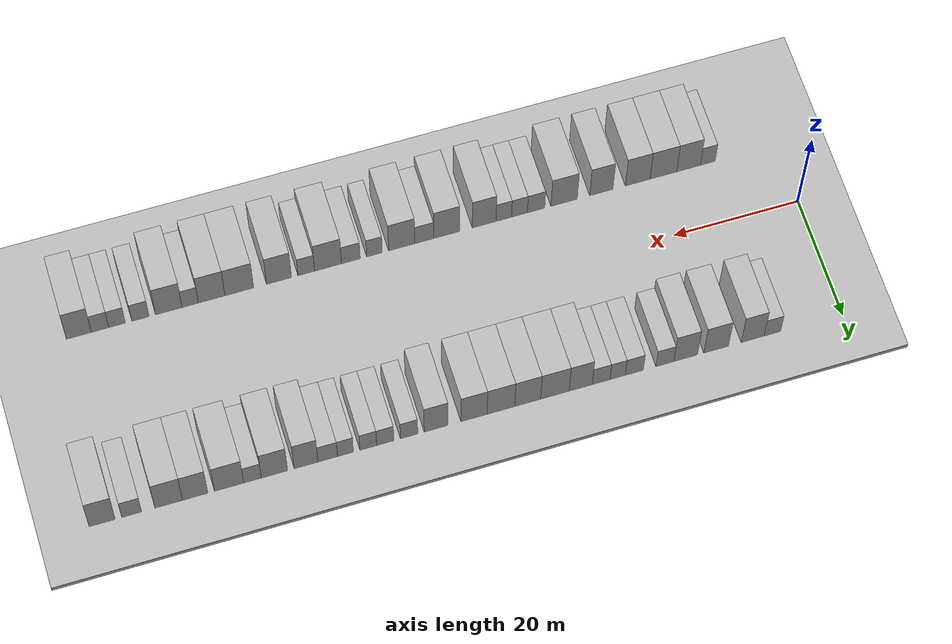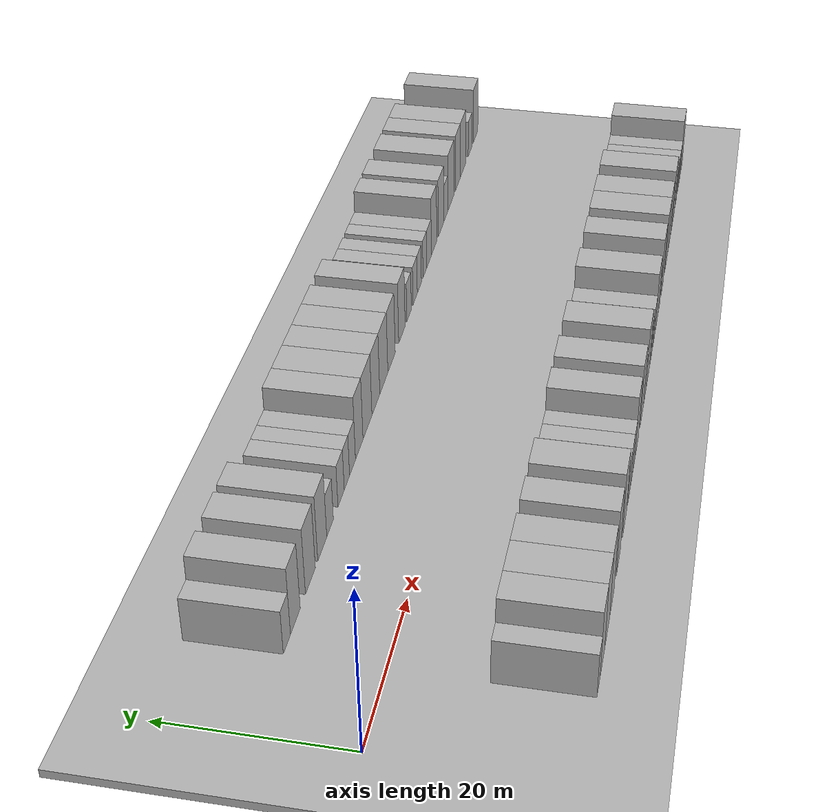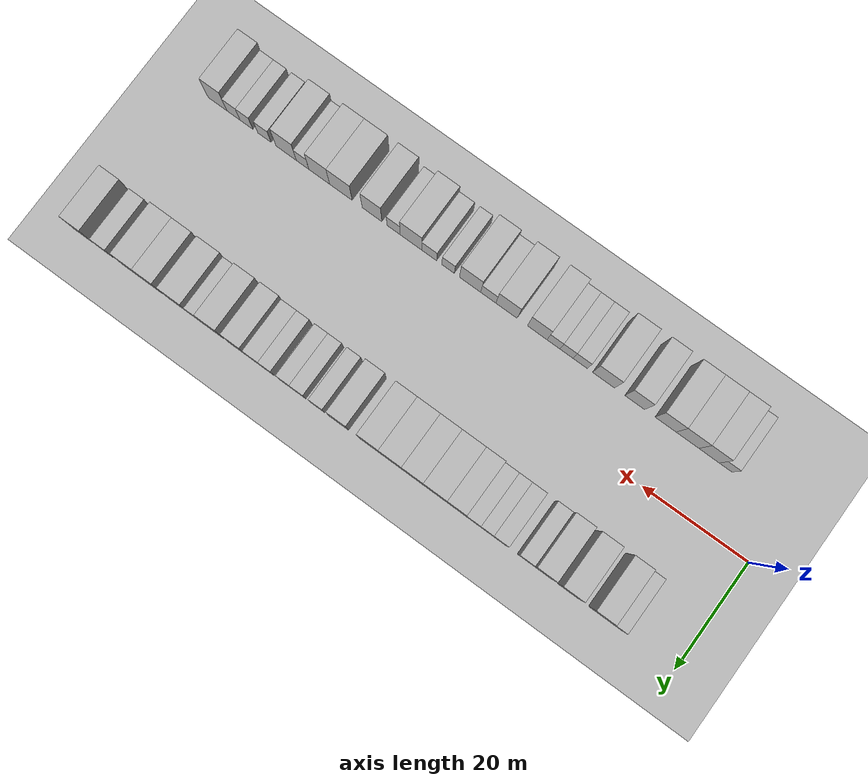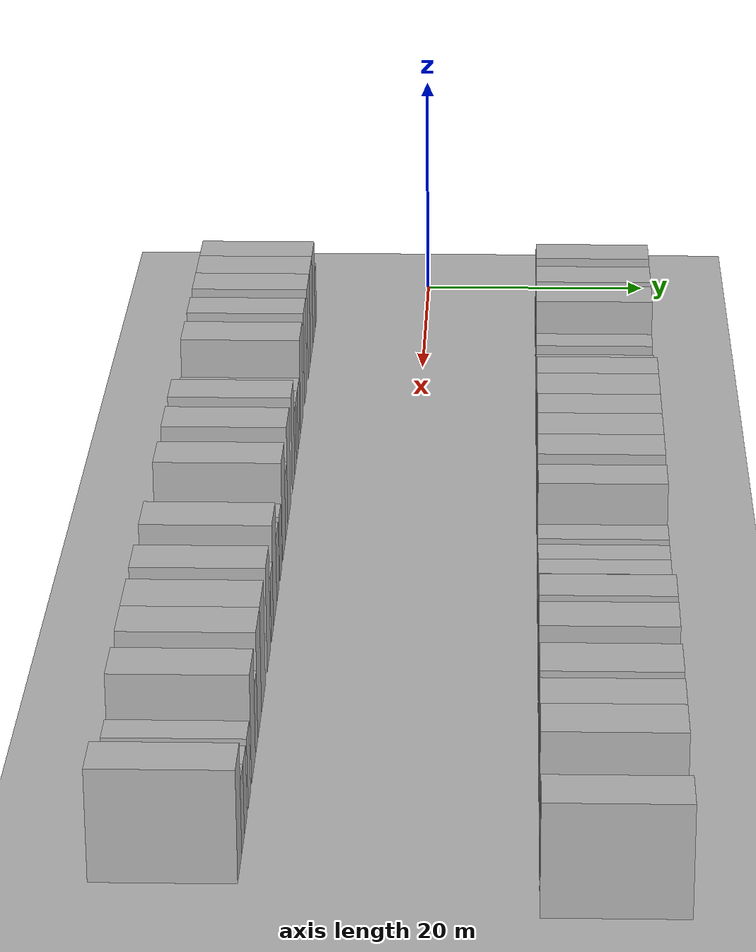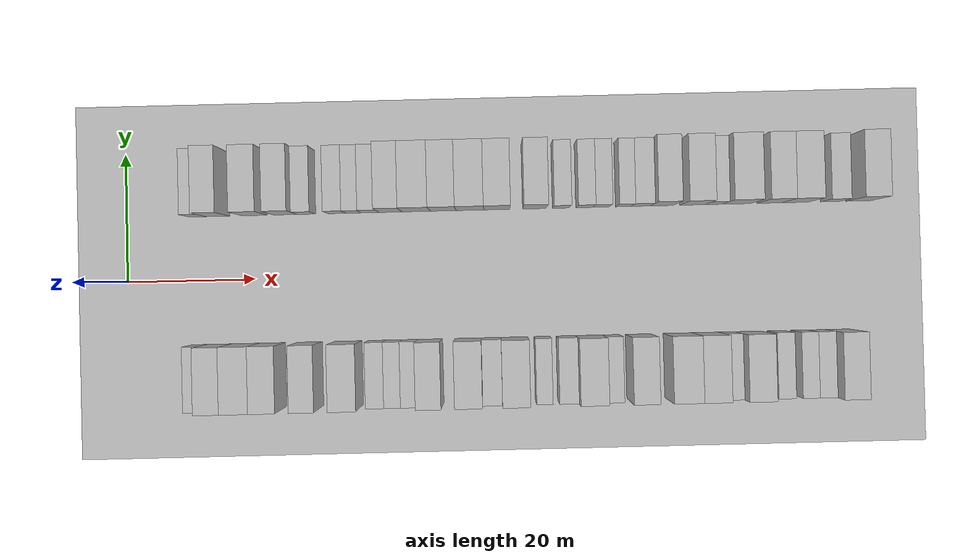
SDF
<sdf version="1.6">
 <world name="default">
  <include><name>ground_plane_1</name><uri>model://HANNAS_ground_plane</uri></include>
  <include>
   <name>ground_plane_2</name>
   <uri>model://HANNAS_ground_plane</uri>
   <pose>100 0 0  0 0 0</pose>
  </include>
  <model name="building_1">
   <static>1</static>
   <pose>11.3128 15.0000 0 0.000000 0.000000 1.570796</pose>
   <link name="link">
    <pose>0 0 3.00 0 0 0</pose>
    <collision name="collision"><geometry><box><size>10.0000 2.6256 6.0000</size></box></geometry></collision>
    <visual name="visual">
     <cast_shadows>0</cast_shadows>
     <geometry><box><size>10.0000 2.6256 6.0000</size></box></geometry>
     <material>
      <script>
       <uri>model://HANNAS_wall/materials/scripts</uri>
       <uri>model://HANNAS_wall/materials/textures</uri>
       <name>vrc/HANNAS_wall</name>
      </script>
     </material>
    </visual>
   </link>
  </model>
  <model name="building_2">
   <static>1</static>
   <pose>14.4493 15.0000 0 0.000000 0.000000 1.570796</pose>
   <link name="link">
    <pose>0 0 4.50 0 0 0</pose>
    <collision name="collision"><geometry><box><size>10.0000 3.6474 9.0000</size></box></geometry></collision>
    <visual name="visual">
     <cast_shadows>0</cast_shadows>
     <geometry><box><size>10.0000 3.6474 9.0000</size></box></geometry>
     <material>
      <script>
       <uri>model://HANNAS_wall/materials/scripts</uri>
       <uri>model://HANNAS_wall/materials/textures</uri>
       <name>vrc/HANNAS_wall</name>
      </script>
     </material>
    </visual>
   </link>
  </model>
  <model name="building_3">
   <static>1</static>
   <pose>20.2281 15.0000 0 0.000000 0.000000 1.570796</pose>
   <link name="link">
    <pose>0 0 4.50 0 0 0</pose>
    <collision name="collision"><geometry><box><size>10.0000 3.9103 9.0000</size></box></geometry></collision>
    <visual name="visual">
     <cast_shadows>0</cast_shadows>
     <geometry><box><size>10.0000 3.9103 9.0000</size></box></geometry>
     <material>
      <script>
       <uri>model://HANNAS_wall/materials/scripts</uri>
       <uri>model://HANNAS_wall/materials/textures</uri>
       <name>vrc/HANNAS_wall</name>
      </script>
     </material>
    </visual>
   </link>
  </model>
  <model name="building_4">
   <static>1</static>
   <pose>25.0439 15.0000 0 0.000000 0.000000 1.570796</pose>
   <link name="link">
    <pose>0 0 4.50 0 0 0</pose>
    <collision name="collision"><geometry><box><size>10.0000 3.7213 9.0000</size></box></geometry></collision>
    <visual name="visual">
     <cast_shadows>0</cast_shadows>
     <geometry><box><size>10.0000 3.7213 9.0000</size></box></geometry>
     <material>
      <script>
       <uri>model://HANNAS_wall/materials/scripts</uri>
       <uri>model://HANNAS_wall/materials/textures</uri>
       <name>vrc/HANNAS_wall</name>
      </script>
     </material>
    </visual>
   </link>
  </model>
  <model name="building_5">
   <static>1</static>
   <pose>28.3138 15.0000 0 0.000000 0.000000 1.570796</pose>
   <link name="link">
    <pose>0 0 3.00 0 0 0</pose>
    <collision name="collision"><geometry><box><size>10.0000 2.8185 6.0000</size></box></geometry></collision>
    <visual name="visual">
     <cast_shadows>0</cast_shadows>
     <geometry><box><size>10.0000 2.8185 6.0000</size></box></geometry>
     <material>
      <script>
       <uri>model://HANNAS_wall/materials/scripts</uri>
       <uri>model://HANNAS_wall/materials/textures</uri>
       <name>vrc/HANNAS_wall</name>
      </script>
     </material>
    </visual>
   </link>
  </model>
  <model name="building_6">
   <static>1</static>
   <pose>33.1258 15.0000 0 0.000000 0.000000 1.570796</pose>
   <link name="link">
    <pose>0 0 3.00 0 0 0</pose>
    <collision name="collision"><geometry><box><size>10.0000 2.8056 6.0000</size></box></geometry></collision>
    <visual name="visual">
     <cast_shadows>0</cast_shadows>
     <geometry><box><size>10.0000 2.8056 6.0000</size></box></geometry>
     <material>
      <script>
       <uri>model://HANNAS_wall/materials/scripts</uri>
       <uri>model://HANNAS_wall/materials/textures</uri>
       <name>vrc/HANNAS_wall</name>
      </script>
     </material>
    </visual>
   </link>
  </model>
  <model name="building_7">
   <static>1</static>
   <pose>35.7378 15.0000 0 0.000000 0.000000 1.570796</pose>
   <link name="link">
    <pose>0 0 3.00 0 0 0</pose>
    <collision name="collision"><geometry><box><size>10.0000 2.4183 6.0000</size></box></geometry></collision>
    <visual name="visual">
     <cast_shadows>0</cast_shadows>
     <geometry><box><size>10.0000 2.4183 6.0000</size></box></geometry>
     <material>
      <script>
       <uri>model://HANNAS_wall/materials/scripts</uri>
       <uri>model://HANNAS_wall/materials/textures</uri>
       <name>vrc/HANNAS_wall</name>
      </script>
     </material>
    </visual>
   </link>
  </model>
  <model name="building_8">
   <static>1</static>
   <pose>38.3267 15.0000 0 0.000000 0.000000 1.570796</pose>
   <link name="link">
    <pose>0 0 3.00 0 0 0</pose>
    <collision name="collision"><geometry><box><size>10.0000 2.7596 6.0000</size></box></geometry></collision>
    <visual name="visual">
     <cast_shadows>0</cast_shadows>
     <geometry><box><size>10.0000 2.7596 6.0000</size></box></geometry>
     <material>
      <script>
       <uri>model://HANNAS_wall/materials/scripts</uri>
       <uri>model://HANNAS_wall/materials/textures</uri>
       <name>vrc/HANNAS_wall</name>
      </script>
     </material>
    </visual>
   </link>
  </model>
  <model name="building_9">
   <static>1</static>
   <pose>41.5138 15.0000 0 0.000000 0.000000 1.570796</pose>
   <link name="link">
    <pose>0 0 4.50 0 0 0</pose>
    <collision name="collision"><geometry><box><size>10.0000 3.6146 9.0000</size></box></geometry></collision>
    <visual name="visual">
     <cast_shadows>0</cast_shadows>
     <geometry><box><size>10.0000 3.6146 9.0000</size></box></geometry>
     <material>
      <script>
       <uri>model://HANNAS_wall/materials/scripts</uri>
       <uri>model://HANNAS_wall/materials/textures</uri>
       <name>vrc/HANNAS_wall</name>
      </script>
     </material>
    </visual>
   </link>
  </model>
  <model name="building_10">
   <static>1</static>
   <pose>45.5383 15.0000 0 0.000000 0.000000 1.570796</pose>
   <link name="link">
    <pose>0 0 4.50 0 0 0</pose>
    <collision name="collision"><geometry><box><size>10.0000 4.4344 9.0000</size></box></geometry></collision>
    <visual name="visual">
     <cast_shadows>0</cast_shadows>
     <geometry><box><size>10.0000 4.4344 9.0000</size></box></geometry>
     <material>
      <script>
       <uri>model://HANNAS_wall/materials/scripts</uri>
       <uri>model://HANNAS_wall/materials/textures</uri>
       <name>vrc/HANNAS_wall</name>
      </script>
     </material>
    </visual>
   </link>
  </model>
  <model name="building_11">
   <static>1</static>
   <pose>49.7776 15.0000 0 0.000000 0.000000 1.570796</pose>
   <link name="link">
    <pose>0 0 4.50 0 0 0</pose>
    <collision name="collision"><geometry><box><size>10.0000 4.0441 9.0000</size></box></geometry></collision>
    <visual name="visual">
     <cast_shadows>0</cast_shadows>
     <geometry><box><size>10.0000 4.0441 9.0000</size></box></geometry>
     <material>
      <script>
       <uri>model://HANNAS_wall/materials/scripts</uri>
       <uri>model://HANNAS_wall/materials/textures</uri>
       <name>vrc/HANNAS_wall</name>
      </script>
     </material>
    </visual>
   </link>
  </model>
  <model name="building_12">
   <static>1</static>
   <pose>53.9528 15.0000 0 0.000000 0.000000 1.570796</pose>
   <link name="link">
    <pose>0 0 4.50 0 0 0</pose>
    <collision name="collision"><geometry><box><size>10.0000 4.3062 9.0000</size></box></geometry></collision>
    <visual name="visual">
     <cast_shadows>0</cast_shadows>
     <geometry><box><size>10.0000 4.3062 9.0000</size></box></geometry>
     <material>
      <script>
       <uri>model://HANNAS_wall/materials/scripts</uri>
       <uri>model://HANNAS_wall/materials/textures</uri>
       <name>vrc/HANNAS_wall</name>
      </script>
     </material>
    </visual>
   </link>
  </model>
  <model name="building_13">
   <static>1</static>
   <pose>58.1287 15.0000 0 0.000000 0.000000 1.570796</pose>
   <link name="link">
    <pose>0 0 4.50 0 0 0</pose>
    <collision name="collision"><geometry><box><size>10.0000 4.0456 9.0000</size></box></geometry></collision>
    <visual name="visual">
     <cast_shadows>0</cast_shadows>
     <geometry><box><size>10.0000 4.0456 9.0000</size></box></geometry>
     <material>
      <script>
       <uri>model://HANNAS_wall/materials/scripts</uri>
       <uri>model://HANNAS_wall/materials/textures</uri>
       <name>vrc/HANNAS_wall</name>
      </script>
     </material>
    </visual>
   </link>
  </model>
  <model name="building_14">
   <static>1</static>
   <pose>63.9874 15.0000 0 0.000000 0.000000 1.570796</pose>
   <link name="link">
    <pose>0 0 4.50 0 0 0</pose>
    <collision name="collision"><geometry><box><size>10.0000 3.6719 9.0000</size></box></geometry></collision>
    <visual name="visual">
     <cast_shadows>0</cast_shadows>
     <geometry><box><size>10.0000 3.6719 9.0000</size></box></geometry>
     <material>
      <script>
       <uri>model://HANNAS_wall/materials/scripts</uri>
       <uri>model://HANNAS_wall/materials/textures</uri>
       <name>vrc/HANNAS_wall</name>
      </script>
     </material>
    </visual>
   </link>
  </model>
  <model name="building_15">
   <static>1</static>
   <pose>68.1576 15.0000 0 0.000000 0.000000 1.570796</pose>
   <link name="link">
    <pose>0 0 3.00 0 0 0</pose>
    <collision name="collision"><geometry><box><size>10.0000 2.6684 6.0000</size></box></geometry></collision>
    <visual name="visual">
     <cast_shadows>0</cast_shadows>
     <geometry><box><size>10.0000 2.6684 6.0000</size></box></geometry>
     <material>
      <script>
       <uri>model://HANNAS_wall/materials/scripts</uri>
       <uri>model://HANNAS_wall/materials/textures</uri>
       <name>vrc/HANNAS_wall</name>
      </script>
     </material>
    </visual>
   </link>
  </model>
  <model name="building_16">
   <static>1</static>
   <pose>71.8129 15.0000 0 0.000000 0.000000 1.570796</pose>
   <link name="link">
    <pose>0 0 3.00 0 0 0</pose>
    <collision name="collision"><geometry><box><size>10.0000 2.6423 6.0000</size></box></geometry></collision>
    <visual name="visual">
     <cast_shadows>0</cast_shadows>
     <geometry><box><size>10.0000 2.6423 6.0000</size></box></geometry>
     <material>
      <script>
       <uri>model://HANNAS_wall/materials/scripts</uri>
       <uri>model://HANNAS_wall/materials/textures</uri>
       <name>vrc/HANNAS_wall</name>
      </script>
     </material>
    </visual>
   </link>
  </model>
  <model name="building_17">
   <static>1</static>
   <pose>74.4219 15.0000 0 0.000000 0.000000 1.570796</pose>
   <link name="link">
    <pose>0 0 3.00 0 0 0</pose>
    <collision name="collision"><geometry><box><size>10.0000 2.5757 6.0000</size></box></geometry></collision>
    <visual name="visual">
     <cast_shadows>0</cast_shadows>
     <geometry><box><size>10.0000 2.5757 6.0000</size></box></geometry>
     <material>
      <script>
       <uri>model://HANNAS_wall/materials/scripts</uri>
       <uri>model://HANNAS_wall/materials/textures</uri>
       <name>vrc/HANNAS_wall</name>
      </script>
     </material>
    </visual>
   </link>
  </model>
  <model name="building_18">
   <static>1</static>
   <pose>77.9255 15.0000 0 0.000000 0.000000 1.570796</pose>
   <link name="link">
    <pose>0 0 3.00 0 0 0</pose>
    <collision name="collision"><geometry><box><size>10.0000 2.4316 6.0000</size></box></geometry></collision>
    <visual name="visual">
     <cast_shadows>0</cast_shadows>
     <geometry><box><size>10.0000 2.4316 6.0000</size></box></geometry>
     <material>
      <script>
       <uri>model://HANNAS_wall/materials/scripts</uri>
       <uri>model://HANNAS_wall/materials/textures</uri>
       <name>vrc/HANNAS_wall</name>
      </script>
     </material>
    </visual>
   </link>
  </model>
  <model name="building_19">
   <static>1</static>
   <pose>80.6324 15.0000 0 0.000000 0.000000 1.570796</pose>
   <link name="link">
    <pose>0 0 3.00 0 0 0</pose>
    <collision name="collision"><geometry><box><size>10.0000 2.9821 6.0000</size></box></geometry></collision>
    <visual name="visual">
     <cast_shadows>0</cast_shadows>
     <geometry><box><size>10.0000 2.9821 6.0000</size></box></geometry>
     <material>
      <script>
       <uri>model://HANNAS_wall/materials/scripts</uri>
       <uri>model://HANNAS_wall/materials/textures</uri>
       <name>vrc/HANNAS_wall</name>
      </script>
     </material>
    </visual>
   </link>
  </model>
  <model name="building_20">
   <static>1</static>
   <pose>83.9403 15.0000 0 0.000000 0.000000 1.570796</pose>
   <link name="link">
    <pose>0 0 4.50 0 0 0</pose>
    <collision name="collision"><geometry><box><size>10.0000 3.6337 9.0000</size></box></geometry></collision>
    <visual name="visual">
     <cast_shadows>0</cast_shadows>
     <geometry><box><size>10.0000 3.6337 9.0000</size></box></geometry>
     <material>
      <script>
       <uri>model://HANNAS_wall/materials/scripts</uri>
       <uri>model://HANNAS_wall/materials/textures</uri>
       <name>vrc/HANNAS_wall</name>
      </script>
     </material>
    </visual>
   </link>
  </model>
  <model name="building_21">
   <static>1</static>
   <pose>88.7528 15.0000 0 0.000000 0.000000 1.570796</pose>
   <link name="link">
    <pose>0 0 4.50 0 0 0</pose>
    <collision name="collision"><geometry><box><size>10.0000 3.9913 9.0000</size></box></geometry></collision>
    <visual name="visual">
     <cast_shadows>0</cast_shadows>
     <geometry><box><size>10.0000 3.9913 9.0000</size></box></geometry>
     <material>
      <script>
       <uri>model://HANNAS_wall/materials/scripts</uri>
       <uri>model://HANNAS_wall/materials/textures</uri>
       <name>vrc/HANNAS_wall</name>
      </script>
     </material>
    </visual>
   </link>
  </model>
  <model name="building_22">
   <static>1</static>
   <pose>92.0898 15.0000 0 0.000000 0.000000 1.570796</pose>
   <link name="link">
    <pose>0 0 3.00 0 0 0</pose>
    <collision name="collision"><geometry><box><size>10.0000 2.6827 6.0000</size></box></geometry></collision>
    <visual name="visual">
     <cast_shadows>0</cast_shadows>
     <geometry><box><size>10.0000 2.6827 6.0000</size></box></geometry>
     <material>
      <script>
       <uri>model://HANNAS_wall/materials/scripts</uri>
       <uri>model://HANNAS_wall/materials/textures</uri>
       <name>vrc/HANNAS_wall</name>
      </script>
     </material>
    </visual>
   </link>
  </model>
  <model name="building_23">
   <static>1</static>
   <pose>95.6516 15.0000 0 0.000000 0.000000 1.570796</pose>
   <link name="link">
    <pose>0 0 4.50 0 0 0</pose>
    <collision name="collision"><geometry><box><size>10.0000 4.4408 9.0000</size></box></geometry></collision>
    <visual name="visual">
     <cast_shadows>0</cast_shadows>
     <geometry><box><size>10.0000 4.4408 9.0000</size></box></geometry>
     <material>
      <script>
       <uri>model://HANNAS_wall/materials/scripts</uri>
       <uri>model://HANNAS_wall/materials/textures</uri>
       <name>vrc/HANNAS_wall</name>
      </script>
     </material>
    </visual>
   </link>
  </model>
  <model name="building_24">
   <static>1</static>
   <pose>100.7843 15.0000 0 0.000000 0.000000 1.570796</pose>
   <link name="link">
    <pose>0 0 4.50 0 0 0</pose>
    <collision name="collision"><geometry><box><size>10.0000 3.8246 9.0000</size></box></geometry></collision>
    <visual name="visual">
     <cast_shadows>0</cast_shadows>
     <geometry><box><size>10.0000 3.8246 9.0000</size></box></geometry>
     <material>
      <script>
       <uri>model://HANNAS_wall/materials/scripts</uri>
       <uri>model://HANNAS_wall/materials/textures</uri>
       <name>vrc/HANNAS_wall</name>
      </script>
     </material>
    </visual>
   </link>
  </model>
  <model name="building_25">
   <static>1</static>
   <pose>104.7812 15.0000 0 0.000000 0.000000 1.570796</pose>
   <link name="link">
    <pose>0 0 4.50 0 0 0</pose>
    <collision name="collision"><geometry><box><size>10.0000 4.1693 9.0000</size></box></geometry></collision>
    <visual name="visual">
     <cast_shadows>0</cast_shadows>
     <geometry><box><size>10.0000 4.1693 9.0000</size></box></geometry>
     <material>
      <script>
       <uri>model://HANNAS_wall/materials/scripts</uri>
       <uri>model://HANNAS_wall/materials/textures</uri>
       <name>vrc/HANNAS_wall</name>
      </script>
     </material>
    </visual>
   </link>
  </model>
  <model name="building_26">
   <static>1</static>
   <pose>110.3599 15.0000 0 0.000000 0.000000 1.570796</pose>
   <link name="link">
    <pose>0 0 3.00 0 0 0</pose>
    <collision name="collision"><geometry><box><size>10.0000 2.9880 6.0000</size></box></geometry></collision>
    <visual name="visual">
     <cast_shadows>0</cast_shadows>
     <geometry><box><size>10.0000 2.9880 6.0000</size></box></geometry>
     <material>
      <script>
       <uri>model://HANNAS_wall/materials/scripts</uri>
       <uri>model://HANNAS_wall/materials/textures</uri>
       <name>vrc/HANNAS_wall</name>
      </script>
     </material>
    </visual>
   </link>
  </model>
  <model name="building_27">
   <static>1</static>
   <pose>114.8001 15.0000 0 0.000000 0.000000 1.570796</pose>
   <link name="link">
    <pose>0 0 4.50 0 0 0</pose>
    <collision name="collision"><geometry><box><size>10.0000 3.8925 9.0000</size></box></geometry></collision>
    <visual name="visual">
     <cast_shadows>0</cast_shadows>
     <geometry><box><size>10.0000 3.8925 9.0000</size></box></geometry>
     <material>
      <script>
       <uri>model://HANNAS_wall/materials/scripts</uri>
       <uri>model://HANNAS_wall/materials/textures</uri>
       <name>vrc/HANNAS_wall</name>
      </script>
     </material>
    </visual>
   </link>
  </model>
  <model name="building_55">
   <static>1</static>
   <pose>11.2029 -15.0000 0 0.000000 0.000000 1.570796</pose>
   <link name="link">
    <pose>0 0 3.00 0 0 0</pose>
    <collision name="collision"><geometry><box><size>10.0000 2.4059 6.0000</size></box></geometry></collision>
    <visual name="visual">
     <cast_shadows>0</cast_shadows>
     <geometry><box><size>10.0000 2.4059 6.0000</size></box></geometry>
     <material>
      <script>
       <uri>model://HANNAS_wall/materials/scripts</uri>
       <uri>model://HANNAS_wall/materials/textures</uri>
       <name>vrc/HANNAS_wall</name>
      </script>
     </material>
    </visual>
   </link>
  </model>
  <model name="building_56">
   <static>1</static>
   <pose>14.3253 -15.0000 0 0.000000 0.000000 1.570796</pose>
   <link name="link">
    <pose>0 0 4.50 0 0 0</pose>
    <collision name="collision"><geometry><box><size>10.0000 3.8389 9.0000</size></box></geometry></collision>
    <visual name="visual">
     <cast_shadows>0</cast_shadows>
     <geometry><box><size>10.0000 3.8389 9.0000</size></box></geometry>
     <material>
      <script>
       <uri>model://HANNAS_wall/materials/scripts</uri>
       <uri>model://HANNAS_wall/materials/textures</uri>
       <name>vrc/HANNAS_wall</name>
      </script>
     </material>
    </visual>
   </link>
  </model>
  <model name="building_57">
   <static>1</static>
   <pose>18.4108 -15.0000 0 0.000000 0.000000 1.570796</pose>
   <link name="link">
    <pose>0 0 4.50 0 0 0</pose>
    <collision name="collision"><geometry><box><size>10.0000 4.3321 9.0000</size></box></geometry></collision>
    <visual name="visual">
     <cast_shadows>0</cast_shadows>
     <geometry><box><size>10.0000 4.3321 9.0000</size></box></geometry>
     <material>
      <script>
       <uri>model://HANNAS_wall/materials/scripts</uri>
       <uri>model://HANNAS_wall/materials/textures</uri>
       <name>vrc/HANNAS_wall</name>
      </script>
     </material>
    </visual>
   </link>
  </model>
  <model name="building_58">
   <static>1</static>
   <pose>22.5724 -15.0000 0 0.000000 0.000000 1.570796</pose>
   <link name="link">
    <pose>0 0 4.50 0 0 0</pose>
    <collision name="collision"><geometry><box><size>10.0000 3.9911 9.0000</size></box></geometry></collision>
    <visual name="visual">
     <cast_shadows>0</cast_shadows>
     <geometry><box><size>10.0000 3.9911 9.0000</size></box></geometry>
     <material>
      <script>
       <uri>model://HANNAS_wall/materials/scripts</uri>
       <uri>model://HANNAS_wall/materials/textures</uri>
       <name>vrc/HANNAS_wall</name>
      </script>
     </material>
    </visual>
   </link>
  </model>
  <model name="building_59">
   <static>1</static>
   <pose>28.4453 -15.0000 0 0.000000 0.000000 1.570796</pose>
   <link name="link">
    <pose>0 0 4.50 0 0 0</pose>
    <collision name="collision"><geometry><box><size>10.0000 3.7548 9.0000</size></box></geometry></collision>
    <visual name="visual">
     <cast_shadows>0</cast_shadows>
     <geometry><box><size>10.0000 3.7548 9.0000</size></box></geometry>
     <material>
      <script>
       <uri>model://HANNAS_wall/materials/scripts</uri>
       <uri>model://HANNAS_wall/materials/textures</uri>
       <name>vrc/HANNAS_wall</name>
      </script>
     </material>
    </visual>
   </link>
  </model>
  <model name="building_60">
   <static>1</static>
   <pose>34.4378 -15.0000 0 0.000000 0.000000 1.570796</pose>
   <link name="link">
    <pose>0 0 4.50 0 0 0</pose>
    <collision name="collision"><geometry><box><size>10.0000 4.2302 9.0000</size></box></geometry></collision>
    <visual name="visual">
     <cast_shadows>0</cast_shadows>
     <geometry><box><size>10.0000 4.2302 9.0000</size></box></geometry>
     <material>
      <script>
       <uri>model://HANNAS_wall/materials/scripts</uri>
       <uri>model://HANNAS_wall/materials/textures</uri>
       <name>vrc/HANNAS_wall</name>
      </script>
     </material>
    </visual>
   </link>
  </model>
  <model name="building_61">
   <static>1</static>
   <pose>38.9397 -15.0000 0 0.000000 0.000000 1.570796</pose>
   <link name="link">
    <pose>0 0 3.00 0 0 0</pose>
    <collision name="collision"><geometry><box><size>10.0000 2.7736 6.0000</size></box></geometry></collision>
    <visual name="visual">
     <cast_shadows>0</cast_shadows>
     <geometry><box><size>10.0000 2.7736 6.0000</size></box></geometry>
     <material>
      <script>
       <uri>model://HANNAS_wall/materials/scripts</uri>
       <uri>model://HANNAS_wall/materials/textures</uri>
       <name>vrc/HANNAS_wall</name>
      </script>
     </material>
    </visual>
   </link>
  </model>
  <model name="building_62">
   <static>1</static>
   <pose>41.5900 -15.0000 0 0.000000 0.000000 1.570796</pose>
   <link name="link">
    <pose>0 0 3.00 0 0 0</pose>
    <collision name="collision"><geometry><box><size>10.0000 2.5271 6.0000</size></box></geometry></collision>
    <visual name="visual">
     <cast_shadows>0</cast_shadows>
     <geometry><box><size>10.0000 2.5271 6.0000</size></box></geometry>
     <material>
      <script>
       <uri>model://HANNAS_wall/materials/scripts</uri>
       <uri>model://HANNAS_wall/materials/textures</uri>
       <name>vrc/HANNAS_wall</name>
      </script>
     </material>
    </visual>
   </link>
  </model>
  <model name="building_63">
   <static>1</static>
   <pose>44.0959 -15.0000 0 0.000000 0.000000 1.570796</pose>
   <link name="link">
    <pose>0 0 3.00 0 0 0</pose>
    <collision name="collision"><geometry><box><size>10.0000 2.4846 6.0000</size></box></geometry></collision>
    <visual name="visual">
     <cast_shadows>0</cast_shadows>
     <geometry><box><size>10.0000 2.4846 6.0000</size></box></geometry>
     <material>
      <script>
       <uri>model://HANNAS_wall/materials/scripts</uri>
       <uri>model://HANNAS_wall/materials/textures</uri>
       <name>vrc/HANNAS_wall</name>
      </script>
     </material>
    </visual>
   </link>
  </model>
  <model name="building_64">
   <static>1</static>
   <pose>47.2443 -15.0000 0 0.000000 0.000000 1.570796</pose>
   <link name="link">
    <pose>0 0 4.50 0 0 0</pose>
    <collision name="collision"><geometry><box><size>10.0000 3.8123 9.0000</size></box></geometry></collision>
    <visual name="visual">
     <cast_shadows>0</cast_shadows>
     <geometry><box><size>10.0000 3.8123 9.0000</size></box></geometry>
     <material>
      <script>
       <uri>model://HANNAS_wall/materials/scripts</uri>
       <uri>model://HANNAS_wall/materials/textures</uri>
       <name>vrc/HANNAS_wall</name>
      </script>
     </material>
    </visual>
   </link>
  </model>
  <model name="building_65">
   <static>1</static>
   <pose>53.2227 -15.0000 0 0.000000 0.000000 1.570796</pose>
   <link name="link">
    <pose>0 0 4.50 0 0 0</pose>
    <collision name="collision"><geometry><box><size>10.0000 4.1446 9.0000</size></box></geometry></collision>
    <visual name="visual">
     <cast_shadows>0</cast_shadows>
     <geometry><box><size>10.0000 4.1446 9.0000</size></box></geometry>
     <material>
      <script>
       <uri>model://HANNAS_wall/materials/scripts</uri>
       <uri>model://HANNAS_wall/materials/textures</uri>
       <name>vrc/HANNAS_wall</name>
      </script>
     </material>
    </visual>
   </link>
  </model>
  <model name="building_66">
   <static>1</static>
   <pose>56.7872 -15.0000 0 0.000000 0.000000 1.570796</pose>
   <link name="link">
    <pose>0 0 3.00 0 0 0</pose>
    <collision name="collision"><geometry><box><size>10.0000 2.9842 6.0000</size></box></geometry></collision>
    <visual name="visual">
     <cast_shadows>0</cast_shadows>
     <geometry><box><size>10.0000 2.9842 6.0000</size></box></geometry>
     <material>
      <script>
       <uri>model://HANNAS_wall/materials/scripts</uri>
       <uri>model://HANNAS_wall/materials/textures</uri>
       <name>vrc/HANNAS_wall</name>
      </script>
     </material>
    </visual>
   </link>
  </model>
  <model name="building_67">
   <static>1</static>
   <pose>60.3565 -15.0000 0 0.000000 0.000000 1.570796</pose>
   <link name="link">
    <pose>0 0 4.50 0 0 0</pose>
    <collision name="collision"><geometry><box><size>10.0000 4.1545 9.0000</size></box></geometry></collision>
    <visual name="visual">
     <cast_shadows>0</cast_shadows>
     <geometry><box><size>10.0000 4.1545 9.0000</size></box></geometry>
     <material>
      <script>
       <uri>model://HANNAS_wall/materials/scripts</uri>
       <uri>model://HANNAS_wall/materials/textures</uri>
       <name>vrc/HANNAS_wall</name>
      </script>
     </material>
    </visual>
   </link>
  </model>
  <model name="building_68">
   <static>1</static>
   <pose>64.6748 -15.0000 0 0.000000 0.000000 1.570796</pose>
   <link name="link">
    <pose>0 0 3.00 0 0 0</pose>
    <collision name="collision"><geometry><box><size>10.0000 2.4820 6.0000</size></box></geometry></collision>
    <visual name="visual">
     <cast_shadows>0</cast_shadows>
     <geometry><box><size>10.0000 2.4820 6.0000</size></box></geometry>
     <material>
      <script>
       <uri>model://HANNAS_wall/materials/scripts</uri>
       <uri>model://HANNAS_wall/materials/textures</uri>
       <name>vrc/HANNAS_wall</name>
      </script>
     </material>
    </visual>
   </link>
  </model>
  <model name="building_69">
   <static>1</static>
   <pose>68.3946 -15.0000 0 0.000000 0.000000 1.570796</pose>
   <link name="link">
    <pose>0 0 3.00 0 0 0</pose>
    <collision name="collision"><geometry><box><size>10.0000 2.9575 6.0000</size></box></geometry></collision>
    <visual name="visual">
     <cast_shadows>0</cast_shadows>
     <geometry><box><size>10.0000 2.9575 6.0000</size></box></geometry>
     <material>
      <script>
       <uri>model://HANNAS_wall/materials/scripts</uri>
       <uri>model://HANNAS_wall/materials/textures</uri>
       <name>vrc/HANNAS_wall</name>
      </script>
     </material>
    </visual>
   </link>
  </model>
  <model name="building_70">
   <static>1</static>
   <pose>71.9985 -15.0000 0 0.000000 0.000000 1.570796</pose>
   <link name="link">
    <pose>0 0 4.50 0 0 0</pose>
    <collision name="collision"><geometry><box><size>10.0000 4.2502 9.0000</size></box></geometry></collision>
    <visual name="visual">
     <cast_shadows>0</cast_shadows>
     <geometry><box><size>10.0000 4.2502 9.0000</size></box></geometry>
     <material>
      <script>
       <uri>model://HANNAS_wall/materials/scripts</uri>
       <uri>model://HANNAS_wall/materials/textures</uri>
       <name>vrc/HANNAS_wall</name>
      </script>
     </material>
    </visual>
   </link>
  </model>
  <model name="building_71">
   <static>1</static>
   <pose>75.4313 -15.0000 0 0.000000 0.000000 1.570796</pose>
   <link name="link">
    <pose>0 0 3.00 0 0 0</pose>
    <collision name="collision"><geometry><box><size>10.0000 2.6155 6.0000</size></box></geometry></collision>
    <visual name="visual">
     <cast_shadows>0</cast_shadows>
     <geometry><box><size>10.0000 2.6155 6.0000</size></box></geometry>
     <material>
      <script>
       <uri>model://HANNAS_wall/materials/scripts</uri>
       <uri>model://HANNAS_wall/materials/textures</uri>
       <name>vrc/HANNAS_wall</name>
      </script>
     </material>
    </visual>
   </link>
  </model>
  <model name="building_72">
   <static>1</static>
   <pose>79.7057 -15.0000 0 0.000000 0.000000 1.570796</pose>
   <link name="link">
    <pose>0 0 4.50 0 0 0</pose>
    <collision name="collision"><geometry><box><size>10.0000 3.9332 9.0000</size></box></geometry></collision>
    <visual name="visual">
     <cast_shadows>0</cast_shadows>
     <geometry><box><size>10.0000 3.9332 9.0000</size></box></geometry>
     <material>
      <script>
       <uri>model://HANNAS_wall/materials/scripts</uri>
       <uri>model://HANNAS_wall/materials/textures</uri>
       <name>vrc/HANNAS_wall</name>
      </script>
     </material>
    </visual>
   </link>
  </model>
  <model name="building_73">
   <static>1</static>
   <pose>85.9189 -15.0000 0 0.000000 0.000000 1.570796</pose>
   <link name="link">
    <pose>0 0 4.50 0 0 0</pose>
    <collision name="collision"><geometry><box><size>10.0000 4.4932 9.0000</size></box></geometry></collision>
    <visual name="visual">
     <cast_shadows>0</cast_shadows>
     <geometry><box><size>10.0000 4.4932 9.0000</size></box></geometry>
     <material>
      <script>
       <uri>model://HANNAS_wall/materials/scripts</uri>
       <uri>model://HANNAS_wall/materials/textures</uri>
       <name>vrc/HANNAS_wall</name>
      </script>
     </material>
    </visual>
   </link>
  </model>
  <model name="building_74">
   <static>1</static>
   <pose>90.2430 -15.0000 0 0.000000 0.000000 1.570796</pose>
   <link name="link">
    <pose>0 0 4.50 0 0 0</pose>
    <collision name="collision"><geometry><box><size>10.0000 4.1552 9.0000</size></box></geometry></collision>
    <visual name="visual">
     <cast_shadows>0</cast_shadows>
     <geometry><box><size>10.0000 4.1552 9.0000</size></box></geometry>
     <material>
      <script>
       <uri>model://HANNAS_wall/materials/scripts</uri>
       <uri>model://HANNAS_wall/materials/textures</uri>
       <name>vrc/HANNAS_wall</name>
      </script>
     </material>
    </visual>
   </link>
  </model>
  <model name="building_75">
   <static>1</static>
   <pose>93.5820 -15.0000 0 0.000000 0.000000 1.570796</pose>
   <link name="link">
    <pose>0 0 3.00 0 0 0</pose>
    <collision name="collision"><geometry><box><size>10.0000 2.5227 6.0000</size></box></geometry></collision>
    <visual name="visual">
     <cast_shadows>0</cast_shadows>
     <geometry><box><size>10.0000 2.5227 6.0000</size></box></geometry>
     <material>
      <script>
       <uri>model://HANNAS_wall/materials/scripts</uri>
       <uri>model://HANNAS_wall/materials/textures</uri>
       <name>vrc/HANNAS_wall</name>
      </script>
     </material>
    </visual>
   </link>
  </model>
  <model name="building_76">
   <static>1</static>
   <pose>96.9068 -15.0000 0 0.000000 0.000000 1.570796</pose>
   <link name="link">
    <pose>0 0 4.50 0 0 0</pose>
    <collision name="collision"><geometry><box><size>10.0000 4.1270 9.0000</size></box></geometry></collision>
    <visual name="visual">
     <cast_shadows>0</cast_shadows>
     <geometry><box><size>10.0000 4.1270 9.0000</size></box></geometry>
     <material>
      <script>
       <uri>model://HANNAS_wall/materials/scripts</uri>
       <uri>model://HANNAS_wall/materials/textures</uri>
       <name>vrc/HANNAS_wall</name>
      </script>
     </material>
    </visual>
   </link>
  </model>
  <model name="building_77">
   <static>1</static>
   <pose>101.3113 -15.0000 0 0.000000 0.000000 1.570796</pose>
   <link name="link">
    <pose>0 0 3.00 0 0 0</pose>
    <collision name="collision"><geometry><box><size>10.0000 2.6820 6.0000</size></box></geometry></collision>
    <visual name="visual">
     <cast_shadows>0</cast_shadows>
     <geometry><box><size>10.0000 2.6820 6.0000</size></box></geometry>
     <material>
      <script>
       <uri>model://HANNAS_wall/materials/scripts</uri>
       <uri>model://HANNAS_wall/materials/textures</uri>
       <name>vrc/HANNAS_wall</name>
      </script>
     </material>
    </visual>
   </link>
  </model>
  <model name="building_78">
   <static>1</static>
   <pose>104.9418 -15.0000 0 0.000000 0.000000 1.570796</pose>
   <link name="link">
    <pose>0 0 3.00 0 0 0</pose>
    <collision name="collision"><geometry><box><size>10.0000 2.5790 6.0000</size></box></geometry></collision>
    <visual name="visual">
     <cast_shadows>0</cast_shadows>
     <geometry><box><size>10.0000 2.5790 6.0000</size></box></geometry>
     <material>
      <script>
       <uri>model://HANNAS_wall/materials/scripts</uri>
       <uri>model://HANNAS_wall/materials/textures</uri>
       <name>vrc/HANNAS_wall</name>
      </script>
     </material>
    </visual>
   </link>
  </model>
  <model name="building_79">
   <static>1</static>
   <pose>107.5654 -15.0000 0 0.000000 0.000000 1.570796</pose>
   <link name="link">
    <pose>0 0 3.00 0 0 0</pose>
    <collision name="collision"><geometry><box><size>10.0000 2.6682 6.0000</size></box></geometry></collision>
    <visual name="visual">
     <cast_shadows>0</cast_shadows>
     <geometry><box><size>10.0000 2.6682 6.0000</size></box></geometry>
     <material>
      <script>
       <uri>model://HANNAS_wall/materials/scripts</uri>
       <uri>model://HANNAS_wall/materials/textures</uri>
       <name>vrc/HANNAS_wall</name>
      </script>
     </material>
    </visual>
   </link>
  </model>
  <model name="building_80">
   <static>1</static>
   <pose>110.8282 -15.0000 0 0.000000 0.000000 1.570796</pose>
   <link name="link">
    <pose>0 0 4.50 0 0 0</pose>
    <collision name="collision"><geometry><box><size>10.0000 3.8574 9.0000</size></box></geometry></collision>
    <visual name="visual">
     <cast_shadows>0</cast_shadows>
     <geometry><box><size>10.0000 3.8574 9.0000</size></box></geometry>
     <material>
      <script>
       <uri>model://HANNAS_wall/materials/scripts</uri>
       <uri>model://HANNAS_wall/materials/textures</uri>
       <name>vrc/HANNAS_wall</name>
      </script>
     </material>
    </visual>
   </link>
  </model>
 </world>
</sdf>
